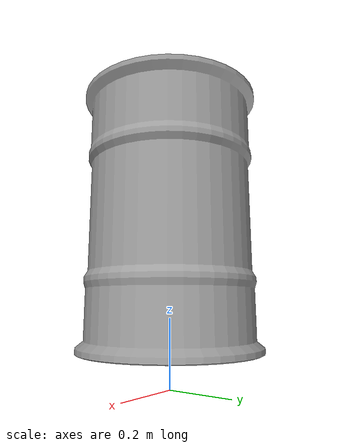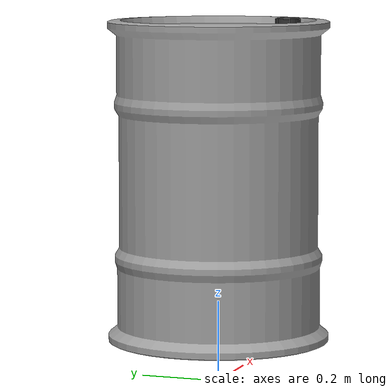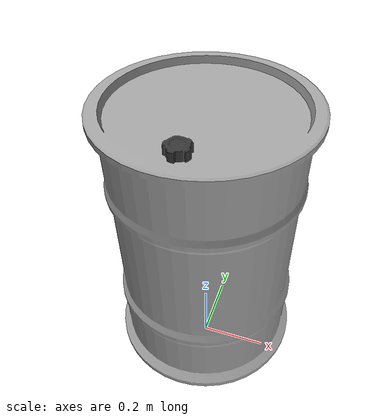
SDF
<?xml version="1.0"?>
<sdf version="1.6">
   <model name="barrel">
      <static>true</static>
      <link name="barrel_link">
	<inertial>
          <mass>50</mass>
          <inertia>
            <ixx>0.166667</ixx>
            <ixy>0</ixy>
            <ixz>0</ixz>
            <iyy>0.166667</iyy>
            <iyz>0</iyz>
            <izz>0.166667</izz>
          </inertia>
          <pose frame=''>0 0 1 0 0 0</pose>
     	</inertial>
	<gravity>1</gravity>

	<pose>0 0 0.1 0 0 0</pose>
	<collision name="collision">
	  <geometry>
	     <mesh>
		<uri>model://barrel/meshes/barrel.dae</uri>
		<scale>0.25 0.25 0.25</scale>
	     </mesh>
	  </geometry>
	</collision>
	<visual name="visual">
	  <geometry>
	     <mesh>
		<uri>model://barrel/meshes/barrel.dae</uri>
		<scale>0.25 0.25 0.25</scale>
  	     </mesh>
	  </geometry>
	</visual>
      </link>
   </model>
</sdf>
